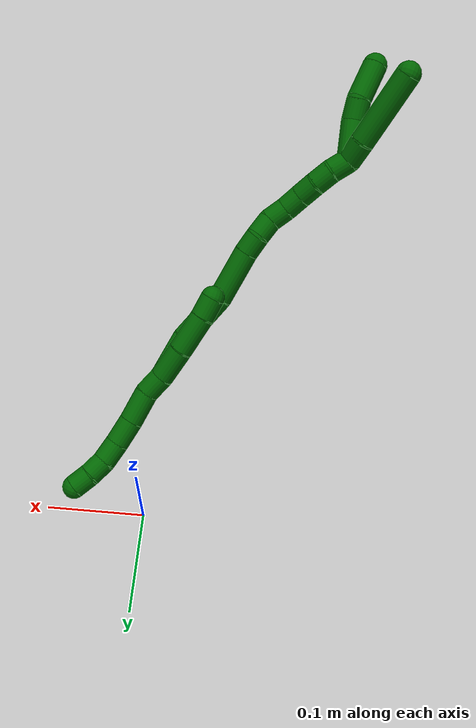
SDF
<sdf version="1.7">
 <world name="default">
  <model name="6">
   <static>0</static>
   <link name="6">
    <collision name="collision-cylinder-e_1_2_8">
     <pose>0.003409 0.003651 -0.010868 -2.8175 0.289012 -1.45469</pose>
     <geometry><cylinder><radius>0.0125</radius><length>0.023921</length></cylinder></geometry>
     <surface>
      <friction><ode><mu>1.16</mu><mu2>1.16</mu2><slip1>0</slip1><slip2>0</slip2></ode></friction>
      <contact><ode><kp>1e+06</kp><kd>1</kd><max_vel>0</max_vel><min_depth>0.001</min_depth></ode></contact>
     </surface>
    </collision>
    <visual name="visual-cylinder-e_1_2_8">
     <pose>0.003409 0.003651 -0.010868 -2.8175 0.289012 -1.45469</pose>
     <geometry><cylinder><radius>0.0125</radius><length>0.023921</length></cylinder></geometry>
     <material><ambient>0 0.392157 0.003922 1</ambient></material>
    </visual>
    <collision name="collision-cylinder-e_2_8_9">
     <pose>0.008925 0.008875 -0.038692 -3.04905 0.123125 -1.8531</pose>
     <geometry><cylinder><radius>0.0125</radius><length>0.034318</length></cylinder></geometry>
     <surface>
      <friction><ode><mu>1.16</mu><mu2>1.16</mu2><slip1>0</slip1><slip2>0</slip2></ode></friction>
      <contact><ode><kp>1e+06</kp><kd>1</kd><max_vel>0</max_vel><min_depth>0.001</min_depth></ode></contact>
     </surface>
    </collision>
    <visual name="visual-cylinder-e_2_8_9">
     <pose>0.008925 0.008875 -0.038692 -3.04905 0.123125 -1.8531</pose>
     <geometry><cylinder><radius>0.0125</radius><length>0.034318</length></cylinder></geometry>
     <material><ambient>0 0.392157 0.003922 1</ambient></material>
    </visual>
    <collision name="collision-cylinder-e_3_9_10">
     <pose>0.012348 0.012676 -0.069465 -2.98182 0.093734 -1.05989</pose>
     <geometry><cylinder><radius>0.0125</radius><length>0.028115</length></cylinder></geometry>
     <surface>
      <friction><ode><mu>1.16</mu><mu2>1.16</mu2><slip1>0</slip1><slip2>0</slip2></ode></friction>
      <contact><ode><kp>1e+06</kp><kd>1</kd><max_vel>0</max_vel><min_depth>0.001</min_depth></ode></contact>
     </surface>
    </collision>
    <visual name="visual-cylinder-e_3_9_10">
     <pose>0.012348 0.012676 -0.069465 -2.98182 0.093734 -1.05989</pose>
     <geometry><cylinder><radius>0.0125</radius><length>0.028115</length></cylinder></geometry>
     <material><ambient>0 0.392157 0.003922 1</ambient></material>
    </visual>
    <collision name="collision-cylinder-e_4_10_11">
     <pose>0.013405 0.017589 -0.094773 -2.91194 -0.021941 0.189672</pose>
     <geometry><cylinder><radius>0.0125</radius><length>0.023607</length></cylinder></geometry>
     <surface>
      <friction><ode><mu>1.16</mu><mu2>1.16</mu2><slip1>0</slip1><slip2>0</slip2></ode></friction>
      <contact><ode><kp>1e+06</kp><kd>1</kd><max_vel>0</max_vel><min_depth>0.001</min_depth></ode></contact>
     </surface>
    </collision>
    <visual name="visual-cylinder-e_4_10_11">
     <pose>0.013405 0.017589 -0.094773 -2.91194 -0.021941 0.189672</pose>
     <geometry><cylinder><radius>0.0125</radius><length>0.023607</length></cylinder></geometry>
     <material><ambient>0 0.392157 0.003922 1</ambient></material>
    </visual>
    <collision name="collision-cylinder-e_5_11_12">
     <pose>0.012334 0.02455 -0.115285 -2.69906 -0.081125 0.356994</pose>
     <geometry><cylinder><radius>0.0125</radius><length>0.02003</length></cylinder></geometry>
     <surface>
      <friction><ode><mu>1.16</mu><mu2>1.16</mu2><slip1>0</slip1><slip2>0</slip2></ode></friction>
      <contact><ode><kp>1e+06</kp><kd>1</kd><max_vel>0</max_vel><min_depth>0.001</min_depth></ode></contact>
     </surface>
    </collision>
    <visual name="visual-cylinder-e_5_11_12">
     <pose>0.012334 0.02455 -0.115285 -2.69906 -0.081125 0.356994</pose>
     <geometry><cylinder><radius>0.0125</radius><length>0.02003</length></cylinder></geometry>
     <material><ambient>0 0.392157 0.003922 1</ambient></material>
    </visual>
    <collision name="collision-cylinder-e_6_12_6">
     <pose>0.012206 0.033778 -0.13297 -2.62225 0.068385 -0.256098</pose>
     <geometry><cylinder><radius>0.0125</radius><length>0.020009</length></cylinder></geometry>
     <surface>
      <friction><ode><mu>1.16</mu><mu2>1.16</mu2><slip1>0</slip1><slip2>0</slip2></ode></friction>
      <contact><ode><kp>1e+06</kp><kd>1</kd><max_vel>0</max_vel><min_depth>0.001</min_depth></ode></contact>
     </surface>
    </collision>
    <visual name="visual-cylinder-e_6_12_6">
     <pose>0.012206 0.033778 -0.13297 -2.62225 0.068385 -0.256098</pose>
     <geometry><cylinder><radius>0.0125</radius><length>0.020009</length></cylinder></geometry>
     <material><ambient>0 0.392157 0.003922 1</ambient></material>
    </visual>
    <collision name="collision-cylinder-e_1_2_13">
     <pose>-0.00665 -0.002573 0.016525 0.154445 -0.378438 -0.029634</pose>
     <geometry><cylinder><radius>0.0125</radius><length>0.035995</length></cylinder></geometry>
     <surface>
      <friction><ode><mu>1.16</mu><mu2>1.16</mu2><slip1>0</slip1><slip2>0</slip2></ode></friction>
      <contact><ode><kp>1e+06</kp><kd>1</kd><max_vel>0</max_vel><min_depth>0.001</min_depth></ode></contact>
     </surface>
    </collision>
    <visual name="visual-cylinder-e_1_2_13">
     <pose>-0.00665 -0.002573 0.016525 0.154445 -0.378438 -0.029634</pose>
     <geometry><cylinder><radius>0.0125</radius><length>0.035995</length></cylinder></geometry>
     <material><ambient>0 0.392157 0.003922 1</ambient></material>
    </visual>
    <collision name="collision-cylinder-e_2_13_14">
     <pose>-0.018932 -0.00806 0.052801 0.146505 -0.274979 -0.020306</pose>
     <geometry><cylinder><radius>0.0125</radius><length>0.041488</length></cylinder></geometry>
     <surface>
      <friction><ode><mu>1.16</mu><mu2>1.16</mu2><slip1>0</slip1><slip2>0</slip2></ode></friction>
      <contact><ode><kp>1e+06</kp><kd>1</kd><max_vel>0</max_vel><min_depth>0.001</min_depth></ode></contact>
     </surface>
    </collision>
    <visual name="visual-cylinder-e_2_13_14">
     <pose>-0.018932 -0.00806 0.052801 0.146505 -0.274979 -0.020306</pose>
     <geometry><cylinder><radius>0.0125</radius><length>0.041488</length></cylinder></geometry>
     <material><ambient>0 0.392157 0.003922 1</ambient></material>
    </visual>
    <collision name="collision-cylinder-e_3_14_5">
     <pose>-0.026797 -0.011756 0.083559 0.070897 -0.199631 -0.007103</pose>
     <geometry><cylinder><radius>0.0125</radius><length>0.022517</length></cylinder></geometry>
     <surface>
      <friction><ode><mu>1.16</mu><mu2>1.16</mu2><slip1>0</slip1><slip2>0</slip2></ode></friction>
      <contact><ode><kp>1e+06</kp><kd>1</kd><max_vel>0</max_vel><min_depth>0.001</min_depth></ode></contact>
     </surface>
    </collision>
    <visual name="visual-cylinder-e_3_14_5">
     <pose>-0.026797 -0.011756 0.083559 0.070897 -0.199631 -0.007103</pose>
     <geometry><cylinder><radius>0.0125</radius><length>0.022517</length></cylinder></geometry>
     <material><ambient>0 0.392157 0.003922 1</ambient></material>
    </visual>
    <collision name="collision-cylinder-e_1_2_15">
     <pose>0.000763 -0.003152 0.023169 0.135203 0.032633 0.00221</pose>
     <geometry><cylinder><radius>0.0125</radius><length>0.046789</length></cylinder></geometry>
     <surface>
      <friction><ode><mu>1.16</mu><mu2>1.16</mu2><slip1>0</slip1><slip2>0</slip2></ode></friction>
      <contact><ode><kp>1e+06</kp><kd>1</kd><max_vel>0</max_vel><min_depth>0.001</min_depth></ode></contact>
     </surface>
    </collision>
    <visual name="visual-cylinder-e_1_2_15">
     <pose>0.000763 -0.003152 0.023169 0.135203 0.032633 0.00221</pose>
     <geometry><cylinder><radius>0.0125</radius><length>0.046789</length></cylinder></geometry>
     <material><ambient>0 0.392157 0.003922 1</ambient></material>
    </visual>
    <collision name="collision-cylinder-e_2_15_16">
     <pose>-0.003139 -0.014899 0.072546 0.316936 -0.167562 -0.026839</pose>
     <geometry><cylinder><radius>0.0125</radius><length>0.055948</length></cylinder></geometry>
     <surface>
      <friction><ode><mu>1.16</mu><mu2>1.16</mu2><slip1>0</slip1><slip2>0</slip2></ode></friction>
      <contact><ode><kp>1e+06</kp><kd>1</kd><max_vel>0</max_vel><min_depth>0.001</min_depth></ode></contact>
     </surface>
    </collision>
    <visual name="visual-cylinder-e_2_15_16">
     <pose>-0.003139 -0.014899 0.072546 0.316936 -0.167562 -0.026839</pose>
     <geometry><cylinder><radius>0.0125</radius><length>0.055948</length></cylinder></geometry>
     <material><ambient>0 0.392157 0.003922 1</ambient></material>
    </visual>
    <collision name="collision-cylinder-e_3_16_17">
     <pose>-0.014812 -0.025671 0.125609 0.080815 -0.254451 -0.010343</pose>
     <geometry><cylinder><radius>0.0125</radius><length>0.055678</length></cylinder></geometry>
     <surface>
      <friction><ode><mu>1.16</mu><mu2>1.16</mu2><slip1>0</slip1><slip2>0</slip2></ode></friction>
      <contact><ode><kp>1e+06</kp><kd>1</kd><max_vel>0</max_vel><min_depth>0.001</min_depth></ode></contact>
     </surface>
    </collision>
    <visual name="visual-cylinder-e_3_16_17">
     <pose>-0.014812 -0.025671 0.125609 0.080815 -0.254451 -0.010343</pose>
     <geometry><cylinder><radius>0.0125</radius><length>0.055678</length></cylinder></geometry>
     <material><ambient>0 0.392157 0.003922 1</ambient></material>
    </visual>
    <collision name="collision-cylinder-e_4_17_18">
     <pose>-0.025309 -0.029522 0.162202 0.170501 -0.339465 -0.02929</pose>
     <geometry><cylinder><radius>0.0125</radius><length>0.02096</length></cylinder></geometry>
     <surface>
      <friction><ode><mu>1.16</mu><mu2>1.16</mu2><slip1>0</slip1><slip2>0</slip2></ode></friction>
      <contact><ode><kp>1e+06</kp><kd>1</kd><max_vel>0</max_vel><min_depth>0.001</min_depth></ode></contact>
     </surface>
    </collision>
    <visual name="visual-cylinder-e_4_17_18">
     <pose>-0.025309 -0.029522 0.162202 0.170501 -0.339465 -0.02929</pose>
     <geometry><cylinder><radius>0.0125</radius><length>0.02096</length></cylinder></geometry>
     <material><ambient>0 0.392157 0.003922 1</ambient></material>
    </visual>
    <collision name="collision-cylinder-e_5_18_19">
     <pose>-0.029425 -0.03382 0.181762 0.260742 -0.061523 -0.008069</pose>
     <geometry><cylinder><radius>0.0125</radius><length>0.020368</length></cylinder></geometry>
     <surface>
      <friction><ode><mu>1.16</mu><mu2>1.16</mu2><slip1>0</slip1><slip2>0</slip2></ode></friction>
      <contact><ode><kp>1e+06</kp><kd>1</kd><max_vel>0</max_vel><min_depth>0.001</min_depth></ode></contact>
     </surface>
    </collision>
    <visual name="visual-cylinder-e_5_18_19">
     <pose>-0.029425 -0.03382 0.181762 0.260742 -0.061523 -0.008069</pose>
     <geometry><cylinder><radius>0.0125</radius><length>0.020368</length></cylinder></geometry>
     <material><ambient>0 0.392157 0.003922 1</ambient></material>
    </visual>
    <collision name="collision-cylinder-e_6_19_20">
     <pose>-0.032727 -0.04137 0.199992 0.530242 -0.267899 -0.073144</pose>
     <geometry><cylinder><radius>0.0125</radius><length>0.020216</length></cylinder></geometry>
     <surface>
      <friction><ode><mu>1.16</mu><mu2>1.16</mu2><slip1>0</slip1><slip2>0</slip2></ode></friction>
      <contact><ode><kp>1e+06</kp><kd>1</kd><max_vel>0</max_vel><min_depth>0.001</min_depth></ode></contact>
     </surface>
    </collision>
    <visual name="visual-cylinder-e_6_19_20">
     <pose>-0.032727 -0.04137 0.199992 0.530242 -0.267899 -0.073144</pose>
     <geometry><cylinder><radius>0.0125</radius><length>0.020216</length></cylinder></geometry>
     <material><ambient>0 0.392157 0.003922 1</ambient></material>
    </visual>
    <collision name="collision-cylinder-e_7_20_21">
     <pose>-0.039612 -0.050014 0.216686 0.421447 -0.434176 -0.094287</pose>
     <geometry><cylinder><radius>0.0125</radius><length>0.020016</length></cylinder></geometry>
     <surface>
      <friction><ode><mu>1.16</mu><mu2>1.16</mu2><slip1>0</slip1><slip2>0</slip2></ode></friction>
      <contact><ode><kp>1e+06</kp><kd>1</kd><max_vel>0</max_vel><min_depth>0.001</min_depth></ode></contact>
     </surface>
    </collision>
    <visual name="visual-cylinder-e_7_20_21">
     <pose>-0.039612 -0.050014 0.216686 0.421447 -0.434176 -0.094287</pose>
     <geometry><cylinder><radius>0.0125</radius><length>0.020016</length></cylinder></geometry>
     <material><ambient>0 0.392157 0.003922 1</ambient></material>
    </visual>
    <collision name="collision-cylinder-e_8_21_22">
     <pose>-0.049336 -0.057105 0.232612 0.416137 -0.58343 -0.126624</pose>
     <geometry><cylinder><radius>0.0125</radius><length>0.020018</length></cylinder></geometry>
     <surface>
      <friction><ode><mu>1.16</mu><mu2>1.16</mu2><slip1>0</slip1><slip2>0</slip2></ode></friction>
      <contact><ode><kp>1e+06</kp><kd>1</kd><max_vel>0</max_vel><min_depth>0.001</min_depth></ode></contact>
     </surface>
    </collision>
    <visual name="visual-cylinder-e_8_21_22">
     <pose>-0.049336 -0.057105 0.232612 0.416137 -0.58343 -0.126624</pose>
     <geometry><cylinder><radius>0.0125</radius><length>0.020018</length></cylinder></geometry>
     <material><ambient>0 0.392157 0.003922 1</ambient></material>
    </visual>
    <collision name="collision-cylinder-e_9_22_23">
     <pose>-0.059025 -0.064582 0.248365 0.468058 -0.430551 -0.104164</pose>
     <geometry><cylinder><radius>0.0125</radius><length>0.020006</length></cylinder></geometry>
     <surface>
      <friction><ode><mu>1.16</mu><mu2>1.16</mu2><slip1>0</slip1><slip2>0</slip2></ode></friction>
      <contact><ode><kp>1e+06</kp><kd>1</kd><max_vel>0</max_vel><min_depth>0.001</min_depth></ode></contact>
     </surface>
    </collision>
    <visual name="visual-cylinder-e_9_22_23">
     <pose>-0.059025 -0.064582 0.248365 0.468058 -0.430551 -0.104164</pose>
     <geometry><cylinder><radius>0.0125</radius><length>0.020006</length></cylinder></geometry>
     <material><ambient>0 0.392157 0.003922 1</ambient></material>
    </visual>
    <collision name="collision-cylinder-e_10_23_1">
     <pose>-0.06607 -0.074171 0.264329 0.609982 -0.291098 -0.092229</pose>
     <geometry><cylinder><radius>0.0125</radius><length>0.02</length></cylinder></geometry>
     <surface>
      <friction><ode><mu>1.16</mu><mu2>1.16</mu2><slip1>0</slip1><slip2>0</slip2></ode></friction>
      <contact><ode><kp>1e+06</kp><kd>1</kd><max_vel>0</max_vel><min_depth>0.001</min_depth></ode></contact>
     </surface>
    </collision>
    <visual name="visual-cylinder-e_10_23_1">
     <pose>-0.06607 -0.074171 0.264329 0.609982 -0.291098 -0.092229</pose>
     <geometry><cylinder><radius>0.0125</radius><length>0.02</length></cylinder></geometry>
     <material><ambient>0 0.392157 0.003922 1</ambient></material>
    </visual>
    <collision name="collision-cylinder-e_1_1_24">
     <pose>-0.068183 -0.074318 0.291421 -0.270796 0.037931 -0.005168</pose>
     <geometry><cylinder><radius>0.0125</radius><length>0.039964</length></cylinder></geometry>
     <surface>
      <friction><ode><mu>1.16</mu><mu2>1.16</mu2><slip1>0</slip1><slip2>0</slip2></ode></friction>
      <contact><ode><kp>1e+06</kp><kd>1</kd><max_vel>0</max_vel><min_depth>0.001</min_depth></ode></contact>
     </surface>
    </collision>
    <visual name="visual-cylinder-e_1_1_24">
     <pose>-0.068183 -0.074318 0.291421 -0.270796 0.037931 -0.005168</pose>
     <geometry><cylinder><radius>0.0125</radius><length>0.039964</length></cylinder></geometry>
     <material><ambient>0 0.392157 0.003922 1</ambient></material>
    </visual>
    <collision name="collision-cylinder-e_2_24_25">
     <pose>-0.0694 -0.066818 0.321087 -0.204072 -0.183428 0.018834</pose>
     <geometry><cylinder><radius>0.0125</radius><length>0.021658</length></cylinder></geometry>
     <surface>
      <friction><ode><mu>1.16</mu><mu2>1.16</mu2><slip1>0</slip1><slip2>0</slip2></ode></friction>
      <contact><ode><kp>1e+06</kp><kd>1</kd><max_vel>0</max_vel><min_depth>0.001</min_depth></ode></contact>
     </surface>
    </collision>
    <visual name="visual-cylinder-e_2_24_25">
     <pose>-0.0694 -0.066818 0.321087 -0.204072 -0.183428 0.018834</pose>
     <geometry><cylinder><radius>0.0125</radius><length>0.021658</length></cylinder></geometry>
     <material><ambient>0 0.392157 0.003922 1</ambient></material>
    </visual>
    <collision name="collision-cylinder-e_3_25_4">
     <pose>-0.071064 -0.065633 0.350675 0.050713 0.016204 0.000411</pose>
     <geometry><cylinder><radius>0.0125</radius><length>0.038378</length></cylinder></geometry>
     <surface>
      <friction><ode><mu>1.16</mu><mu2>1.16</mu2><slip1>0</slip1><slip2>0</slip2></ode></friction>
      <contact><ode><kp>1e+06</kp><kd>1</kd><max_vel>0</max_vel><min_depth>0.001</min_depth></ode></contact>
     </surface>
    </collision>
    <visual name="visual-cylinder-e_3_25_4">
     <pose>-0.071064 -0.065633 0.350675 0.050713 0.016204 0.000411</pose>
     <geometry><cylinder><radius>0.0125</radius><length>0.038378</length></cylinder></geometry>
     <material><ambient>0 0.392157 0.003922 1</ambient></material>
    </visual>
    <collision name="collision-cylinder-e_1_1_26">
     <pose>-0.076725 -0.080267 0.281393 0.065978 -0.70051 -0.024111</pose>
     <geometry><cylinder><radius>0.0125</radius><length>0.024152</length></cylinder></geometry>
     <surface>
      <friction><ode><mu>1.16</mu><mu2>1.16</mu2><slip1>0</slip1><slip2>0</slip2></ode></friction>
      <contact><ode><kp>1e+06</kp><kd>1</kd><max_vel>0</max_vel><min_depth>0.001</min_depth></ode></contact>
     </surface>
    </collision>
    <visual name="visual-cylinder-e_1_1_26">
     <pose>-0.076725 -0.080267 0.281393 0.065978 -0.70051 -0.024111</pose>
     <geometry><cylinder><radius>0.0125</radius><length>0.024152</length></cylinder></geometry>
     <material><ambient>0 0.392157 0.003922 1</ambient></material>
    </visual>
    <collision name="collision-cylinder-e_2_26_3">
     <pose>-0.103798 -0.083913 0.323116 0.093137 -0.533574 -0.025472</pose>
     <geometry><cylinder><radius>0.0125</radius><length>0.075848</length></cylinder></geometry>
     <surface>
      <friction><ode><mu>1.16</mu><mu2>1.16</mu2><slip1>0</slip1><slip2>0</slip2></ode></friction>
      <contact><ode><kp>1e+06</kp><kd>1</kd><max_vel>0</max_vel><min_depth>0.001</min_depth></ode></contact>
     </surface>
    </collision>
    <visual name="visual-cylinder-e_2_26_3">
     <pose>-0.103798 -0.083913 0.323116 0.093137 -0.533574 -0.025472</pose>
     <geometry><cylinder><radius>0.0125</radius><length>0.075848</length></cylinder></geometry>
     <material><ambient>0 0.392157 0.003922 1</ambient></material>
    </visual>
    <collision name="collision-sphere-3">
     <pose>-0.123086 -0.08695 0.355627 0 -0 0</pose>
     <geometry><sphere><radius>0.0125</radius></sphere></geometry>
     <surface>
      <friction><ode><mu>1.16</mu><mu2>1.16</mu2><slip1>0</slip1><slip2>0</slip2></ode></friction>
      <contact><ode><kp>1e+06</kp><kd>1</kd><max_vel>0</max_vel><min_depth>0.001</min_depth></ode></contact>
     </surface>
    </collision>
    <visual name="visual-sphere-3">
     <pose>-0.123086 -0.08695 0.355627 0 -0 0</pose>
     <geometry><sphere><radius>0.0125</radius></sphere></geometry>
     <material><ambient>0 0.392157 0.003922 1</ambient></material>
    </visual>
    <collision name="collision-sphere-26">
     <pose>-0.084509 -0.080876 0.290606 0 -0 0</pose>
     <geometry><sphere><radius>0.0125</radius></sphere></geometry>
     <surface>
      <friction><ode><mu>1.16</mu><mu2>1.16</mu2><slip1>0</slip1><slip2>0</slip2></ode></friction>
      <contact><ode><kp>1e+06</kp><kd>1</kd><max_vel>0</max_vel><min_depth>0.001</min_depth></ode></contact>
     </surface>
    </collision>
    <visual name="visual-sphere-26">
     <pose>-0.084509 -0.080876 0.290606 0 -0 0</pose>
     <geometry><sphere><radius>0.0125</radius></sphere></geometry>
     <material><ambient>0 0.392157 0.003922 1</ambient></material>
    </visual>
    <collision name="collision-sphere-4">
     <pose>-0.070753 -0.066606 0.369837 0 -0 0</pose>
     <geometry><sphere><radius>0.0125</radius></sphere></geometry>
     <surface>
      <friction><ode><mu>1.16</mu><mu2>1.16</mu2><slip1>0</slip1><slip2>0</slip2></ode></friction>
      <contact><ode><kp>1e+06</kp><kd>1</kd><max_vel>0</max_vel><min_depth>0.001</min_depth></ode></contact>
     </surface>
    </collision>
    <visual name="visual-sphere-4">
     <pose>-0.070753 -0.066606 0.369837 0 -0 0</pose>
     <geometry><sphere><radius>0.0125</radius></sphere></geometry>
     <material><ambient>0 0.392157 0.003922 1</ambient></material>
    </visual>
    <collision name="collision-sphere-25">
     <pose>-0.071375 -0.064661 0.331513 0 -0 0</pose>
     <geometry><sphere><radius>0.0125</radius></sphere></geometry>
     <surface>
      <friction><ode><mu>1.16</mu><mu2>1.16</mu2><slip1>0</slip1><slip2>0</slip2></ode></friction>
      <contact><ode><kp>1e+06</kp><kd>1</kd><max_vel>0</max_vel><min_depth>0.001</min_depth></ode></contact>
     </surface>
    </collision>
    <visual name="visual-sphere-25">
     <pose>-0.071375 -0.064661 0.331513 0 -0 0</pose>
     <geometry><sphere><radius>0.0125</radius></sphere></geometry>
     <material><ambient>0 0.392157 0.003922 1</ambient></material>
    </visual>
    <collision name="collision-sphere-24">
     <pose>-0.067425 -0.068976 0.310661 0 -0 0</pose>
     <geometry><sphere><radius>0.0125</radius></sphere></geometry>
     <surface>
      <friction><ode><mu>1.16</mu><mu2>1.16</mu2><slip1>0</slip1><slip2>0</slip2></ode></friction>
      <contact><ode><kp>1e+06</kp><kd>1</kd><max_vel>0</max_vel><min_depth>0.001</min_depth></ode></contact>
     </surface>
    </collision>
    <visual name="visual-sphere-24">
     <pose>-0.067425 -0.068976 0.310661 0 -0 0</pose>
     <geometry><sphere><radius>0.0125</radius></sphere></geometry>
     <material><ambient>0 0.392157 0.003922 1</ambient></material>
    </visual>
    <collision name="collision-sphere-1">
     <pose>-0.06894 -0.079659 0.272181 0 -0 0</pose>
     <geometry><sphere><radius>0.0125</radius></sphere></geometry>
     <surface>
      <friction><ode><mu>1.16</mu><mu2>1.16</mu2><slip1>0</slip1><slip2>0</slip2></ode></friction>
      <contact><ode><kp>1e+06</kp><kd>1</kd><max_vel>0</max_vel><min_depth>0.001</min_depth></ode></contact>
     </surface>
    </collision>
    <visual name="visual-sphere-1">
     <pose>-0.06894 -0.079659 0.272181 0 -0 0</pose>
     <geometry><sphere><radius>0.0125</radius></sphere></geometry>
     <material><ambient>0 0.392157 0.003922 1</ambient></material>
    </visual>
    <collision name="collision-sphere-23">
     <pose>-0.0632 -0.068683 0.256477 0 -0 0</pose>
     <geometry><sphere><radius>0.0125</radius></sphere></geometry>
     <surface>
      <friction><ode><mu>1.16</mu><mu2>1.16</mu2><slip1>0</slip1><slip2>0</slip2></ode></friction>
      <contact><ode><kp>1e+06</kp><kd>1</kd><max_vel>0</max_vel><min_depth>0.001</min_depth></ode></contact>
     </surface>
    </collision>
    <visual name="visual-sphere-23">
     <pose>-0.0632 -0.068683 0.256477 0 -0 0</pose>
     <geometry><sphere><radius>0.0125</radius></sphere></geometry>
     <material><ambient>0 0.392157 0.003922 1</ambient></material>
    </visual>
    <collision name="collision-sphere-22">
     <pose>-0.05485 -0.060481 0.240252 0 -0 0</pose>
     <geometry><sphere><radius>0.0125</radius></sphere></geometry>
     <surface>
      <friction><ode><mu>1.16</mu><mu2>1.16</mu2><slip1>0</slip1><slip2>0</slip2></ode></friction>
      <contact><ode><kp>1e+06</kp><kd>1</kd><max_vel>0</max_vel><min_depth>0.001</min_depth></ode></contact>
     </surface>
    </collision>
    <visual name="visual-sphere-22">
     <pose>-0.05485 -0.060481 0.240252 0 -0 0</pose>
     <geometry><sphere><radius>0.0125</radius></sphere></geometry>
     <material><ambient>0 0.392157 0.003922 1</ambient></material>
    </visual>
    <collision name="collision-sphere-21">
     <pose>-0.043822 -0.053728 0.224971 0 -0 0</pose>
     <geometry><sphere><radius>0.0125</radius></sphere></geometry>
     <surface>
      <friction><ode><mu>1.16</mu><mu2>1.16</mu2><slip1>0</slip1><slip2>0</slip2></ode></friction>
      <contact><ode><kp>1e+06</kp><kd>1</kd><max_vel>0</max_vel><min_depth>0.001</min_depth></ode></contact>
     </surface>
    </collision>
    <visual name="visual-sphere-21">
     <pose>-0.043822 -0.053728 0.224971 0 -0 0</pose>
     <geometry><sphere><radius>0.0125</radius></sphere></geometry>
     <material><ambient>0 0.392157 0.003922 1</ambient></material>
    </visual>
    <collision name="collision-sphere-12">
     <pose>0.011523 0.028824 -0.124305 0 -0 0</pose>
     <geometry><sphere><radius>0.0125</radius></sphere></geometry>
     <surface>
      <friction><ode><mu>1.16</mu><mu2>1.16</mu2><slip1>0</slip1><slip2>0</slip2></ode></friction>
      <contact><ode><kp>1e+06</kp><kd>1</kd><max_vel>0</max_vel><min_depth>0.001</min_depth></ode></contact>
     </surface>
    </collision>
    <visual name="visual-sphere-12">
     <pose>0.011523 0.028824 -0.124305 0 -0 0</pose>
     <geometry><sphere><radius>0.0125</radius></sphere></geometry>
     <material><ambient>0 0.392157 0.003922 1</ambient></material>
    </visual>
    <collision name="collision-sphere-11">
     <pose>0.013146 0.020275 -0.106264 0 -0 0</pose>
     <geometry><sphere><radius>0.0125</radius></sphere></geometry>
     <surface>
      <friction><ode><mu>1.16</mu><mu2>1.16</mu2><slip1>0</slip1><slip2>0</slip2></ode></friction>
      <contact><ode><kp>1e+06</kp><kd>1</kd><max_vel>0</max_vel><min_depth>0.001</min_depth></ode></contact>
     </surface>
    </collision>
    <visual name="visual-sphere-11">
     <pose>0.013146 0.020275 -0.106264 0 -0 0</pose>
     <geometry><sphere><radius>0.0125</radius></sphere></geometry>
     <material><ambient>0 0.392157 0.003922 1</ambient></material>
    </visual>
    <collision name="collision-sphere-10">
     <pose>0.013664 0.014902 -0.083282 0 -0 0</pose>
     <geometry><sphere><radius>0.0125</radius></sphere></geometry>
     <surface>
      <friction><ode><mu>1.16</mu><mu2>1.16</mu2><slip1>0</slip1><slip2>0</slip2></ode></friction>
      <contact><ode><kp>1e+06</kp><kd>1</kd><max_vel>0</max_vel><min_depth>0.001</min_depth></ode></contact>
     </surface>
    </collision>
    <visual name="visual-sphere-10">
     <pose>0.013664 0.014902 -0.083282 0 -0 0</pose>
     <geometry><sphere><radius>0.0125</radius></sphere></geometry>
     <material><ambient>0 0.392157 0.003922 1</ambient></material>
    </visual>
    <collision name="collision-sphere-9">
     <pose>0.011032 0.010449 -0.055648 0 -0 0</pose>
     <geometry><sphere><radius>0.0125</radius></sphere></geometry>
     <surface>
      <friction><ode><mu>1.16</mu><mu2>1.16</mu2><slip1>0</slip1><slip2>0</slip2></ode></friction>
      <contact><ode><kp>1e+06</kp><kd>1</kd><max_vel>0</max_vel><min_depth>0.001</min_depth></ode></contact>
     </surface>
    </collision>
    <visual name="visual-sphere-9">
     <pose>0.011032 0.010449 -0.055648 0 -0 0</pose>
     <geometry><sphere><radius>0.0125</radius></sphere></geometry>
     <material><ambient>0 0.392157 0.003922 1</ambient></material>
    </visual>
    <collision name="collision-sphere-2">
     <geometry><sphere><radius>0.0125</radius></sphere></geometry>
     <surface>
      <friction><ode><mu>1.16</mu><mu2>1.16</mu2><slip1>0</slip1><slip2>0</slip2></ode></friction>
      <contact><ode><kp>1e+06</kp><kd>1</kd><max_vel>0</max_vel><min_depth>0.001</min_depth></ode></contact>
     </surface>
    </collision>
    <visual name="visual-sphere-2">
     <geometry><sphere><radius>0.0125</radius></sphere></geometry>
     <material><ambient>0 0.392157 0.003922 1</ambient></material>
    </visual>
    <collision name="collision-sphere-19">
     <pose>-0.030051 -0.03644 0.191583 0 -0 0</pose>
     <geometry><sphere><radius>0.0125</radius></sphere></geometry>
     <surface>
      <friction><ode><mu>1.16</mu><mu2>1.16</mu2><slip1>0</slip1><slip2>0</slip2></ode></friction>
      <contact><ode><kp>1e+06</kp><kd>1</kd><max_vel>0</max_vel><min_depth>0.001</min_depth></ode></contact>
     </surface>
    </collision>
    <visual name="visual-sphere-19">
     <pose>-0.030051 -0.03644 0.191583 0 -0 0</pose>
     <geometry><sphere><radius>0.0125</radius></sphere></geometry>
     <material><ambient>0 0.392157 0.003922 1</ambient></material>
    </visual>
    <collision name="collision-sphere-8">
     <pose>0.006818 0.007302 -0.021735 0 -0 0</pose>
     <geometry><sphere><radius>0.0125</radius></sphere></geometry>
     <surface>
      <friction><ode><mu>1.16</mu><mu2>1.16</mu2><slip1>0</slip1><slip2>0</slip2></ode></friction>
      <contact><ode><kp>1e+06</kp><kd>1</kd><max_vel>0</max_vel><min_depth>0.001</min_depth></ode></contact>
     </surface>
    </collision>
    <visual name="visual-sphere-8">
     <pose>0.006818 0.007302 -0.021735 0 -0 0</pose>
     <geometry><sphere><radius>0.0125</radius></sphere></geometry>
     <material><ambient>0 0.392157 0.003922 1</ambient></material>
    </visual>
    <collision name="collision-sphere-6">
     <pose>0.01289 0.038732 -0.141635 0 -0 0</pose>
     <geometry><sphere><radius>0.0125</radius></sphere></geometry>
     <surface>
      <friction><ode><mu>1.16</mu><mu2>1.16</mu2><slip1>0</slip1><slip2>0</slip2></ode></friction>
      <contact><ode><kp>1e+06</kp><kd>1</kd><max_vel>0</max_vel><min_depth>0.001</min_depth></ode></contact>
     </surface>
    </collision>
    <visual name="visual-sphere-6">
     <pose>0.01289 0.038732 -0.141635 0 -0 0</pose>
     <geometry><sphere><radius>0.0125</radius></sphere></geometry>
     <material><ambient>0 0.392157 0.003922 1</ambient></material>
    </visual>
    <collision name="collision-sphere-13">
     <pose>-0.013299 -0.005145 0.03305 0 -0 0</pose>
     <geometry><sphere><radius>0.0125</radius></sphere></geometry>
     <surface>
      <friction><ode><mu>1.16</mu><mu2>1.16</mu2><slip1>0</slip1><slip2>0</slip2></ode></friction>
      <contact><ode><kp>1e+06</kp><kd>1</kd><max_vel>0</max_vel><min_depth>0.001</min_depth></ode></contact>
     </surface>
    </collision>
    <visual name="visual-sphere-13">
     <pose>-0.013299 -0.005145 0.03305 0 -0 0</pose>
     <geometry><sphere><radius>0.0125</radius></sphere></geometry>
     <material><ambient>0 0.392157 0.003922 1</ambient></material>
    </visual>
    <collision name="collision-sphere-14">
     <pose>-0.024564 -0.010974 0.072552 0 -0 0</pose>
     <geometry><sphere><radius>0.0125</radius></sphere></geometry>
     <surface>
      <friction><ode><mu>1.16</mu><mu2>1.16</mu2><slip1>0</slip1><slip2>0</slip2></ode></friction>
      <contact><ode><kp>1e+06</kp><kd>1</kd><max_vel>0</max_vel><min_depth>0.001</min_depth></ode></contact>
     </surface>
    </collision>
    <visual name="visual-sphere-14">
     <pose>-0.024564 -0.010974 0.072552 0 -0 0</pose>
     <geometry><sphere><radius>0.0125</radius></sphere></geometry>
     <material><ambient>0 0.392157 0.003922 1</ambient></material>
    </visual>
    <collision name="collision-sphere-5">
     <pose>-0.029029 -0.012538 0.094566 0 -0 0</pose>
     <geometry><sphere><radius>0.0125</radius></sphere></geometry>
     <surface>
      <friction><ode><mu>1.16</mu><mu2>1.16</mu2><slip1>0</slip1><slip2>0</slip2></ode></friction>
      <contact><ode><kp>1e+06</kp><kd>1</kd><max_vel>0</max_vel><min_depth>0.001</min_depth></ode></contact>
     </surface>
    </collision>
    <visual name="visual-sphere-5">
     <pose>-0.029029 -0.012538 0.094566 0 -0 0</pose>
     <geometry><sphere><radius>0.0125</radius></sphere></geometry>
     <material><ambient>0 0.392157 0.003922 1</ambient></material>
    </visual>
    <collision name="collision-sphere-15">
     <pose>0.001527 -0.006303 0.046337 0 -0 0</pose>
     <geometry><sphere><radius>0.0125</radius></sphere></geometry>
     <surface>
      <friction><ode><mu>1.16</mu><mu2>1.16</mu2><slip1>0</slip1><slip2>0</slip2></ode></friction>
      <contact><ode><kp>1e+06</kp><kd>1</kd><max_vel>0</max_vel><min_depth>0.001</min_depth></ode></contact>
     </surface>
    </collision>
    <visual name="visual-sphere-15">
     <pose>0.001527 -0.006303 0.046337 0 -0 0</pose>
     <geometry><sphere><radius>0.0125</radius></sphere></geometry>
     <material><ambient>0 0.392157 0.003922 1</ambient></material>
    </visual>
    <collision name="collision-sphere-16">
     <pose>-0.007804 -0.023496 0.098754 0 -0 0</pose>
     <geometry><sphere><radius>0.0125</radius></sphere></geometry>
     <surface>
      <friction><ode><mu>1.16</mu><mu2>1.16</mu2><slip1>0</slip1><slip2>0</slip2></ode></friction>
      <contact><ode><kp>1e+06</kp><kd>1</kd><max_vel>0</max_vel><min_depth>0.001</min_depth></ode></contact>
     </surface>
    </collision>
    <visual name="visual-sphere-16">
     <pose>-0.007804 -0.023496 0.098754 0 -0 0</pose>
     <geometry><sphere><radius>0.0125</radius></sphere></geometry>
     <material><ambient>0 0.392157 0.003922 1</ambient></material>
    </visual>
    <collision name="collision-sphere-17">
     <pose>-0.021819 -0.027846 0.152464 0 -0 0</pose>
     <geometry><sphere><radius>0.0125</radius></sphere></geometry>
     <surface>
      <friction><ode><mu>1.16</mu><mu2>1.16</mu2><slip1>0</slip1><slip2>0</slip2></ode></friction>
      <contact><ode><kp>1e+06</kp><kd>1</kd><max_vel>0</max_vel><min_depth>0.001</min_depth></ode></contact>
     </surface>
    </collision>
    <visual name="visual-sphere-17">
     <pose>-0.021819 -0.027846 0.152464 0 -0 0</pose>
     <geometry><sphere><radius>0.0125</radius></sphere></geometry>
     <material><ambient>0 0.392157 0.003922 1</ambient></material>
    </visual>
    <collision name="collision-sphere-18">
     <pose>-0.028799 -0.031199 0.171941 0 -0 0</pose>
     <geometry><sphere><radius>0.0125</radius></sphere></geometry>
     <surface>
      <friction><ode><mu>1.16</mu><mu2>1.16</mu2><slip1>0</slip1><slip2>0</slip2></ode></friction>
      <contact><ode><kp>1e+06</kp><kd>1</kd><max_vel>0</max_vel><min_depth>0.001</min_depth></ode></contact>
     </surface>
    </collision>
    <visual name="visual-sphere-18">
     <pose>-0.028799 -0.031199 0.171941 0 -0 0</pose>
     <geometry><sphere><radius>0.0125</radius></sphere></geometry>
     <material><ambient>0 0.392157 0.003922 1</ambient></material>
    </visual>
    <collision name="collision-sphere-20">
     <pose>-0.035402 -0.046299 0.208401 0 -0 0</pose>
     <geometry><sphere><radius>0.0125</radius></sphere></geometry>
     <surface>
      <friction><ode><mu>1.16</mu><mu2>1.16</mu2><slip1>0</slip1><slip2>0</slip2></ode></friction>
      <contact><ode><kp>1e+06</kp><kd>1</kd><max_vel>0</max_vel><min_depth>0.001</min_depth></ode></contact>
     </surface>
    </collision>
    <visual name="visual-sphere-20">
     <pose>-0.035402 -0.046299 0.208401 0 -0 0</pose>
     <geometry><sphere><radius>0.0125</radius></sphere></geometry>
     <material><ambient>0 0.392157 0.003922 1</ambient></material>
    </visual>
    <inertial>
     <pose>-0.03174 -0.030765 0.133083 0 -0 0</pose>
     <mass>0.75</mass>
     <inertia><ixx>0.0001</ixx><ixy>0</ixy><ixz>0</ixz><iyy>0.000103</iyy><iyz>0</iyz><izz>7.8e-05</izz></inertia>
    </inertial>
   </link>
   <pose>-0.007751 -0.126311 0.072653 0.676229 0.940297 -1.1448</pose>
  </model>
 </world>
</sdf>
